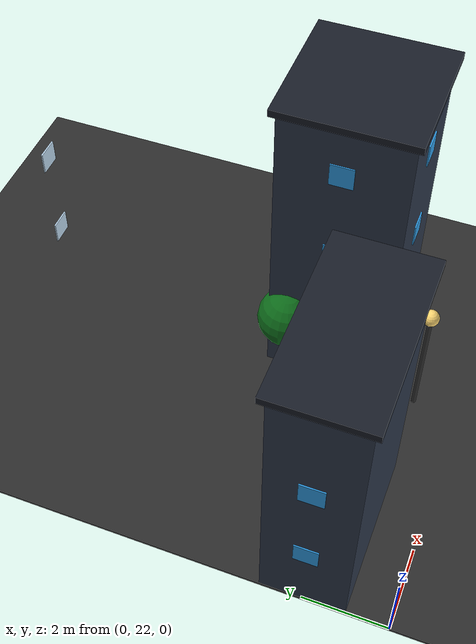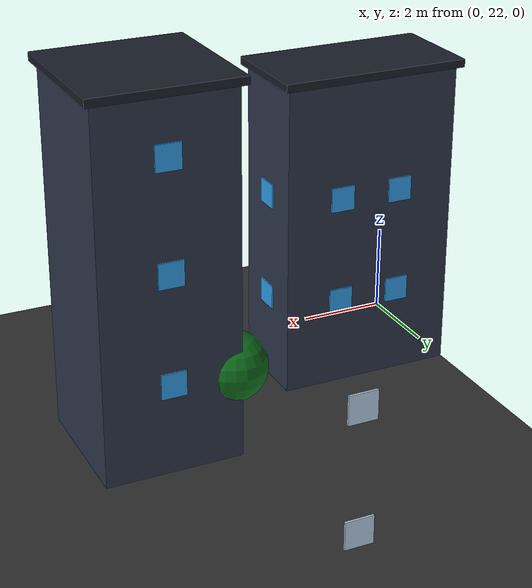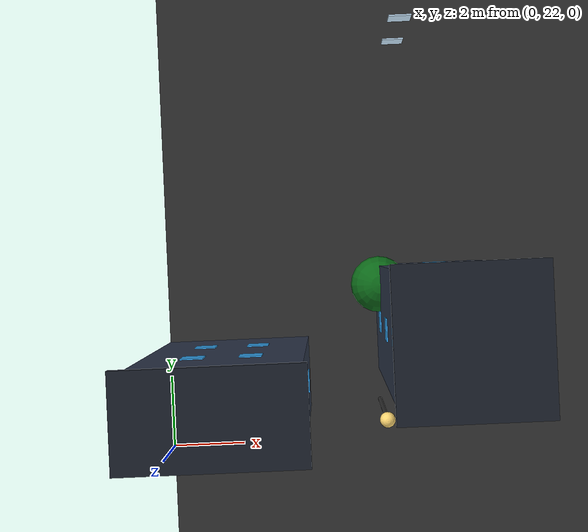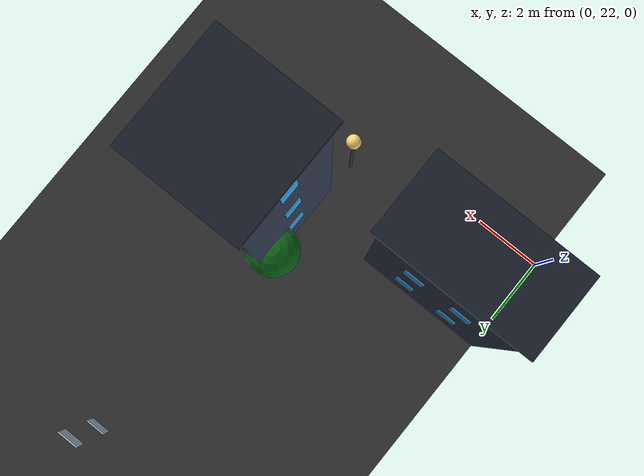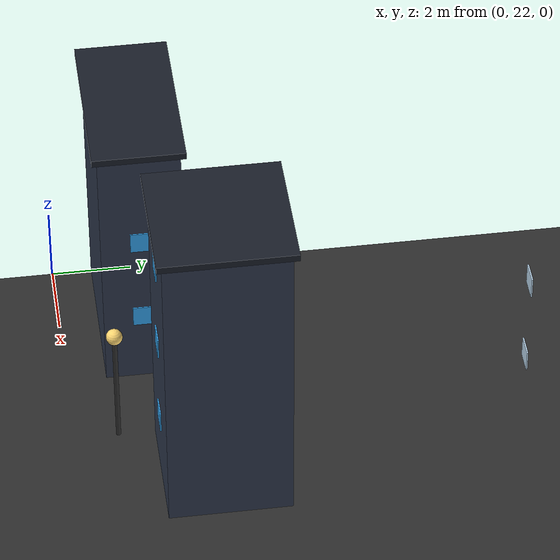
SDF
<sdf version="1.10">
 <world name="city_uav_demo">
  <model name="ground_plane">
   <static>true</static>
   <pose>20.0000 20.0000 -0.0500 0 0 0.0000</pose>
   <link name="link">
    <collision name="collision"><geometry><box><size>40.0000 40.0000 0.1000</size></box></geometry></collision>
    <visual name="visual">
     <geometry><box><size>40.0000 40.0000 0.1000</size></box></geometry>
     <material><ambient>0.18 0.18 0.18 1.0</ambient><diffuse>0.18 0.18 0.18 1.0</diffuse></material>
    </visual>
   </link>
  </model>
  <model name="building_6_window_front_0">
   <static>true</static>
   <pose>6.6250 32.9880 2.0000 0 0 0.0000</pose>
   <link name="link">
    <visual name="visual">
     <geometry><box><size>0.5500 0.0350 0.5500</size></box></geometry>
     <material><ambient>0.75 0.86 0.95 1.0</ambient><diffuse>0.75 0.86 0.95 1.0</diffuse></material>
    </visual>
   </link>
  </model>
  <model name="building_6_window_front_2">
   <static>true</static>
   <pose>6.6250 32.9880 4.4000 0 0 0.0000</pose>
   <link name="link">
    <visual name="visual">
     <geometry><box><size>0.5500 0.0350 0.5500</size></box></geometry>
     <material><ambient>0.75 0.86 0.95 1.0</ambient><diffuse>0.75 0.86 0.95 1.0</diffuse></material>
    </visual>
   </link>
  </model>
  <model name="building_15_body">
   <static>true</static>
   <pose>7.5000 25.5000 4.0000 0 0 0.0000</pose>
   <link name="link">
    <collision name="collision"><geometry><box><size>3.0000 3.0000 8.0000</size></box></geometry></collision>
    <visual name="visual">
     <geometry><box><size>3.0000 3.0000 8.0000</size></box></geometry>
     <material><ambient>0.18 0.22 0.30 1.0</ambient><diffuse>0.18 0.22 0.30 1.0</diffuse></material>
    </visual>
   </link>
  </model>
  <model name="building_15_roof">
   <static>true</static>
   <pose>7.5000 25.5000 8.0900 0 0 0.0000</pose>
   <link name="link">
    <collision name="collision"><geometry><box><size>3.2500 3.2500 0.1800</size></box></geometry></collision>
    <visual name="visual">
     <geometry><box><size>3.2500 3.2500 0.1800</size></box></geometry>
     <material><ambient>0.10 0.12 0.16 1.0</ambient><diffuse>0.10 0.12 0.16 1.0</diffuse></material>
    </visual>
   </link>
  </model>
  <model name="building_15_window_front_0">
   <static>true</static>
   <pose>7.5000 23.9880 2.0000 0 0 0.0000</pose>
   <link name="link">
    <visual name="visual">
     <geometry><box><size>0.5500 0.0350 0.5500</size></box></geometry>
     <material><ambient>0.20 0.65 0.95 1.0</ambient><diffuse>0.20 0.65 0.95 1.0</diffuse></material>
    </visual>
   </link>
  </model>
  <model name="building_15_window_front_1">
   <static>true</static>
   <pose>7.5000 23.9880 4.4000 0 0 0.0000</pose>
   <link name="link">
    <visual name="visual">
     <geometry><box><size>0.5500 0.0350 0.5500</size></box></geometry>
     <material><ambient>0.20 0.65 0.95 1.0</ambient><diffuse>0.20 0.65 0.95 1.0</diffuse></material>
    </visual>
   </link>
  </model>
  <model name="building_15_window_front_2">
   <static>true</static>
   <pose>7.5000 23.9880 6.8000 0 0 0.0000</pose>
   <link name="link">
    <visual name="visual">
     <geometry><box><size>0.5500 0.0350 0.5500</size></box></geometry>
     <material><ambient>0.20 0.65 0.95 1.0</ambient><diffuse>0.20 0.65 0.95 1.0</diffuse></material>
    </visual>
   </link>
  </model>
  <model name="building_15_window_back_0">
   <static>true</static>
   <pose>7.5000 27.0120 2.0000 0 0 0.0000</pose>
   <link name="link">
    <visual name="visual">
     <geometry><box><size>0.5500 0.0350 0.5500</size></box></geometry>
     <material><ambient>0.20 0.65 0.95 1.0</ambient><diffuse>0.20 0.65 0.95 1.0</diffuse></material>
    </visual>
   </link>
  </model>
  <model name="building_15_window_back_1">
   <static>true</static>
   <pose>7.5000 27.0120 4.4000 0 0 0.0000</pose>
   <link name="link">
    <visual name="visual">
     <geometry><box><size>0.5500 0.0350 0.5500</size></box></geometry>
     <material><ambient>0.20 0.65 0.95 1.0</ambient><diffuse>0.20 0.65 0.95 1.0</diffuse></material>
    </visual>
   </link>
  </model>
  <model name="building_15_window_back_2">
   <static>true</static>
   <pose>7.5000 27.0120 6.8000 0 0 0.0000</pose>
   <link name="link">
    <visual name="visual">
     <geometry><box><size>0.5500 0.0350 0.5500</size></box></geometry>
     <material><ambient>0.20 0.65 0.95 1.0</ambient><diffuse>0.20 0.65 0.95 1.0</diffuse></material>
    </visual>
   </link>
  </model>
  <model name="building_15_window_left_0">
   <static>true</static>
   <pose>5.9880 25.5000 2.0000 0 0 0.0000</pose>
   <link name="link">
    <visual name="visual">
     <geometry><box><size>0.0350 0.5500 0.5500</size></box></geometry>
     <material><ambient>0.20 0.65 0.95 1.0</ambient><diffuse>0.20 0.65 0.95 1.0</diffuse></material>
    </visual>
   </link>
  </model>
  <model name="building_15_window_left_1">
   <static>true</static>
   <pose>5.9880 25.5000 4.4000 0 0 0.0000</pose>
   <link name="link">
    <visual name="visual">
     <geometry><box><size>0.0350 0.5500 0.5500</size></box></geometry>
     <material><ambient>0.20 0.65 0.95 1.0</ambient><diffuse>0.20 0.65 0.95 1.0</diffuse></material>
    </visual>
   </link>
  </model>
  <model name="building_15_window_left_2">
   <static>true</static>
   <pose>5.9880 25.5000 6.8000 0 0 0.0000</pose>
   <link name="link">
    <visual name="visual">
     <geometry><box><size>0.0350 0.5500 0.5500</size></box></geometry>
     <material><ambient>0.20 0.65 0.95 1.0</ambient><diffuse>0.20 0.65 0.95 1.0</diffuse></material>
    </visual>
   </link>
  </model>
  <model name="building_21_body">
   <static>true</static>
   <pose>2.0000 24.0000 3.5000 0 0 0.0000</pose>
   <link name="link">
    <collision name="collision"><geometry><box><size>4.0000 2.0000 7.0000</size></box></geometry></collision>
    <visual name="visual">
     <geometry><box><size>4.0000 2.0000 7.0000</size></box></geometry>
     <material><ambient>0.18 0.22 0.30 1.0</ambient><diffuse>0.18 0.22 0.30 1.0</diffuse></material>
    </visual>
   </link>
  </model>
  <model name="building_21_roof">
   <static>true</static>
   <pose>2.0000 24.0000 7.0900 0 0 0.0000</pose>
   <link name="link">
    <collision name="collision"><geometry><box><size>4.2500 2.2500 0.1800</size></box></geometry></collision>
    <visual name="visual">
     <geometry><box><size>4.2500 2.2500 0.1800</size></box></geometry>
     <material><ambient>0.10 0.12 0.16 1.0</ambient><diffuse>0.10 0.12 0.16 1.0</diffuse></material>
    </visual>
   </link>
  </model>
  <model name="building_21_window_back_0">
   <static>true</static>
   <pose>1.3000 25.0120 2.0000 0 0 0.0000</pose>
   <link name="link">
    <visual name="visual">
     <geometry><box><size>0.5500 0.0350 0.5500</size></box></geometry>
     <material><ambient>0.20 0.65 0.95 1.0</ambient><diffuse>0.20 0.65 0.95 1.0</diffuse></material>
    </visual>
   </link>
  </model>
  <model name="building_21_window_back_1">
   <static>true</static>
   <pose>2.7000 25.0120 2.0000 0 0 0.0000</pose>
   <link name="link">
    <visual name="visual">
     <geometry><box><size>0.5500 0.0350 0.5500</size></box></geometry>
     <material><ambient>0.20 0.65 0.95 1.0</ambient><diffuse>0.20 0.65 0.95 1.0</diffuse></material>
    </visual>
   </link>
  </model>
  <model name="building_21_window_back_2">
   <static>true</static>
   <pose>1.3000 25.0120 4.4000 0 0 0.0000</pose>
   <link name="link">
    <visual name="visual">
     <geometry><box><size>0.5500 0.0350 0.5500</size></box></geometry>
     <material><ambient>0.20 0.65 0.95 1.0</ambient><diffuse>0.20 0.65 0.95 1.0</diffuse></material>
    </visual>
   </link>
  </model>
  <model name="building_21_window_back_3">
   <static>true</static>
   <pose>2.7000 25.0120 4.4000 0 0 0.0000</pose>
   <link name="link">
    <visual name="visual">
     <geometry><box><size>0.5500 0.0350 0.5500</size></box></geometry>
     <material><ambient>0.20 0.65 0.95 1.0</ambient><diffuse>0.20 0.65 0.95 1.0</diffuse></material>
    </visual>
   </link>
  </model>
  <model name="building_21_window_left_0">
   <static>true</static>
   <pose>-0.0120 24.0000 2.0000 0 0 0.0000</pose>
   <link name="link">
    <visual name="visual">
     <geometry><box><size>0.0350 0.5500 0.5500</size></box></geometry>
     <material><ambient>0.20 0.65 0.95 1.0</ambient><diffuse>0.20 0.65 0.95 1.0</diffuse></material>
    </visual>
   </link>
  </model>
  <model name="building_21_window_left_1">
   <static>true</static>
   <pose>-0.0120 24.0000 4.4000 0 0 0.0000</pose>
   <link name="link">
    <visual name="visual">
     <geometry><box><size>0.0350 0.5500 0.5500</size></box></geometry>
     <material><ambient>0.20 0.65 0.95 1.0</ambient><diffuse>0.20 0.65 0.95 1.0</diffuse></material>
    </visual>
   </link>
  </model>
  <model name="building_21_window_right_0">
   <static>true</static>
   <pose>4.0120 24.0000 2.0000 0 0 0.0000</pose>
   <link name="link">
    <visual name="visual">
     <geometry><box><size>0.0350 0.5500 0.5500</size></box></geometry>
     <material><ambient>0.20 0.65 0.95 1.0</ambient><diffuse>0.20 0.65 0.95 1.0</diffuse></material>
    </visual>
   </link>
  </model>
  <model name="building_21_window_right_1">
   <static>true</static>
   <pose>4.0120 24.0000 4.4000 0 0 0.0000</pose>
   <link name="link">
    <visual name="visual">
     <geometry><box><size>0.0350 0.5500 0.5500</size></box></geometry>
     <material><ambient>0.20 0.65 0.95 1.0</ambient><diffuse>0.20 0.65 0.95 1.0</diffuse></material>
    </visual>
   </link>
  </model>
  <model name="streetlight_3_pole">
   <static>true</static>
   <pose>6.0000 23.1000 1.6000 0.0000 0.0000 0.0000</pose>
   <link name="link">
    <visual name="visual">
     <geometry><cylinder><radius>0.0600</radius><length>3.2000</length></cylinder></geometry>
     <material><ambient>0.18 0.18 0.18 1.0</ambient><diffuse>0.18 0.18 0.18 1.0</diffuse></material>
    </visual>
   </link>
  </model>
  <model name="streetlight_3_lamp">
   <static>true</static>
   <pose>6.0000 23.1000 3.2500 0 0 0</pose>
   <link name="link">
    <visual name="visual">
     <geometry><sphere><radius>0.2000</radius></sphere></geometry>
     <material><ambient>1.0 0.85 0.45 1.0</ambient><diffuse>1.0 0.85 0.45 1.0</diffuse></material>
    </visual>
   </link>
  </model>
  <model name="tree_15_trunk">
   <static>true</static>
   <pose>6.0000 26.5000 0.7500 0.0000 0.0000 0.0000</pose>
   <link name="link">
    <visual name="visual">
     <geometry><cylinder><radius>0.1200</radius><length>1.5000</length></cylinder></geometry>
     <material><ambient>0.32 0.18 0.08 1.0</ambient><diffuse>0.32 0.18 0.08 1.0</diffuse></material>
    </visual>
   </link>
  </model>
  <model name="tree_15_crown">
   <static>true</static>
   <pose>6.0000 26.5000 1.8500 0 0 0</pose>
   <link name="link">
    <visual name="visual">
     <geometry><sphere><radius>0.7500</radius></sphere></geometry>
     <material><ambient>0.05 0.42 0.10 1.0</ambient><diffuse>0.05 0.42 0.10 1.0</diffuse></material>
    </visual>
   </link>
  </model>
 </world>
</sdf>
